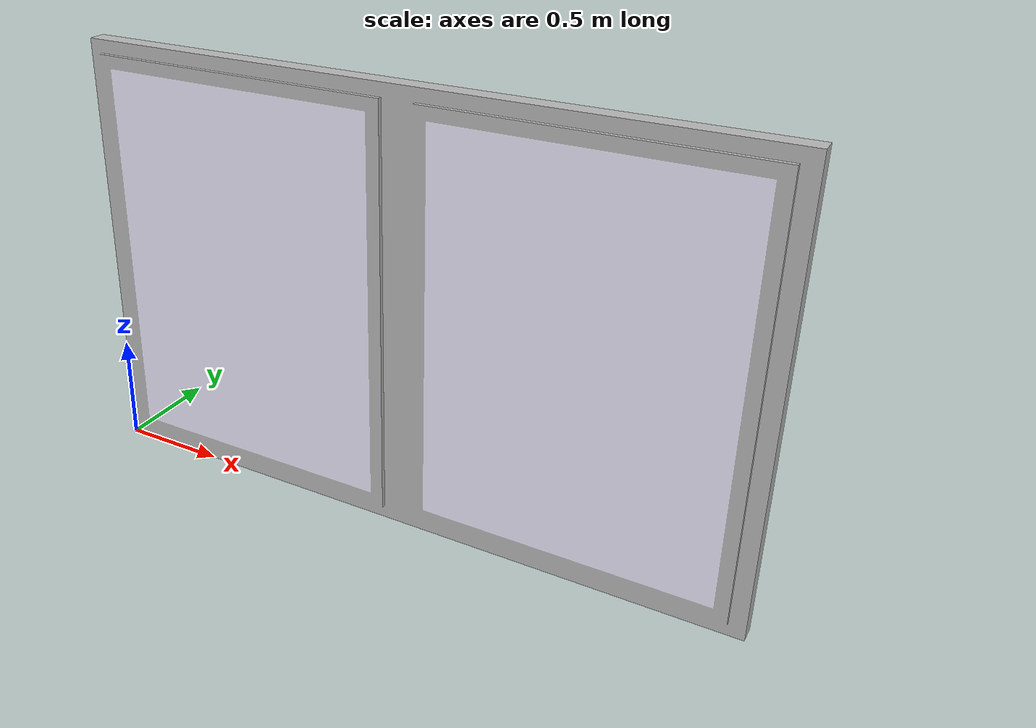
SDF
<?xml version="1.0"?>

<sdf version="1.6">
  <model name='windows_2'>
    <static>true</static>
    <link name="body">

        <visual name="visual">
          <geometry>
            <mesh><uri>model://models/windows_2/meshes/windows_2.dae</uri></mesh>
          </geometry>
        </visual>

        <collision name="collision">
          <geometry>
            <mesh><uri>model://models/windows_2/meshes/windows_2.dae</uri></mesh>
          </geometry>
        </collision>

    </link>
  </model>
</sdf>
